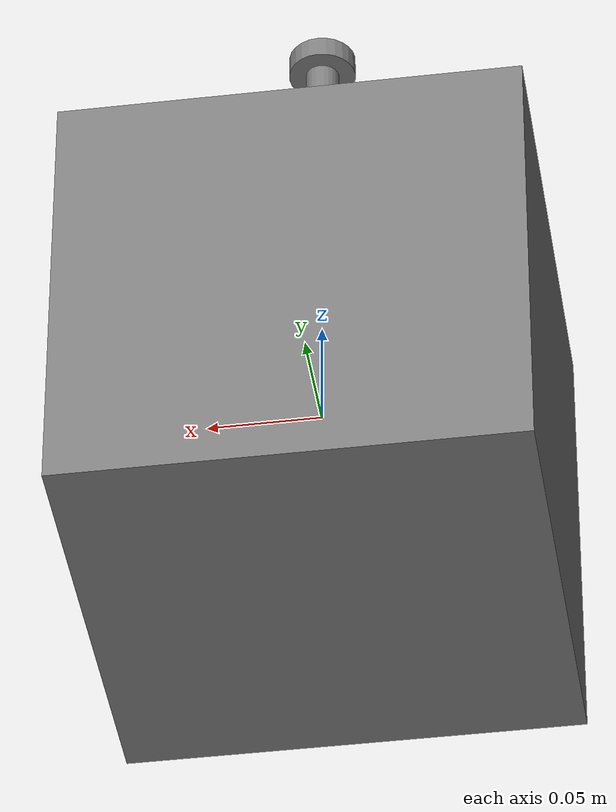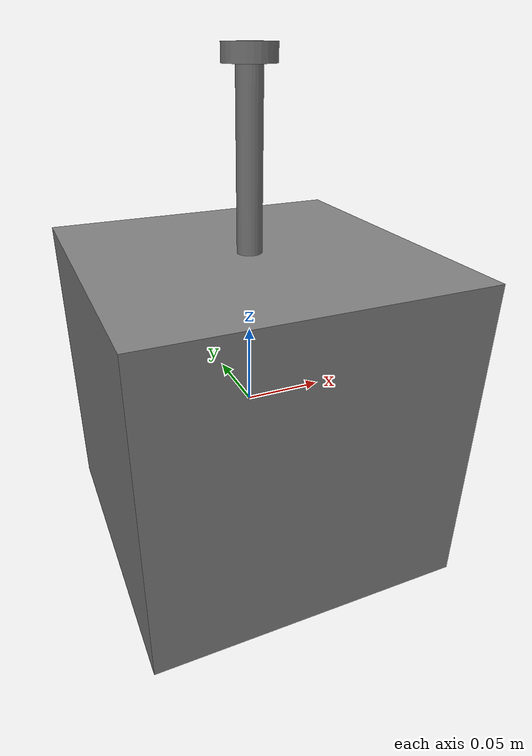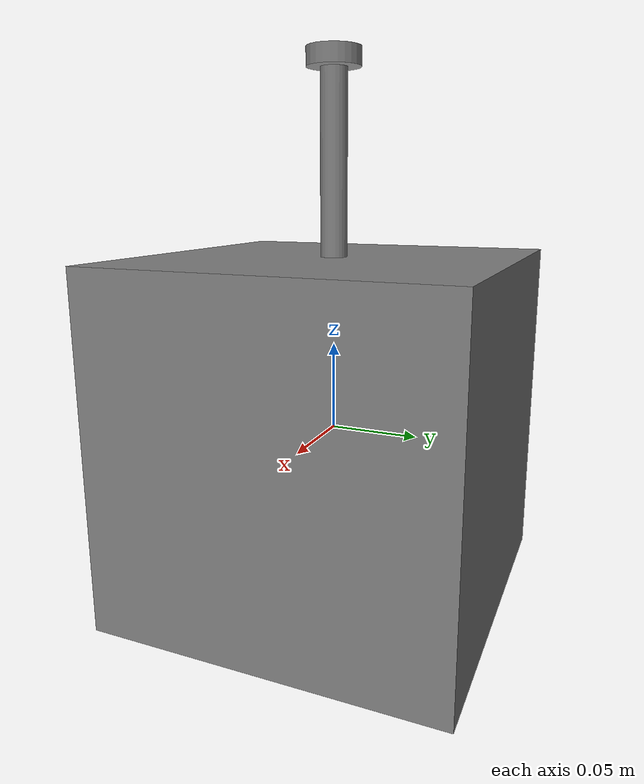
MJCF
<?xml version="1.0" ?>

<mujoco>
  <compiler angle="radian" coordinate="local"/>
  <option>
    <flag gravity="disable"/>
  </option>
  <contact>
    <exclude body1="nail_base" body2="nail"/>
  </contact>
  <default>
    <default class="visual">
      <geom contype="0" conaffinity="0"/>
    </default>
    <default class="collision">
      <geom contype="1" conaffinity="1"/>
    </default>
    <site rgba="1 0 0 .5"/>
  </default>

  <worldbody>
    <include file="nail_collision.xml"/>
  </worldbody>
</mujoco>

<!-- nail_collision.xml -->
<mujoco>
  <body name="nail_base" euler="0 0 0" pos="0 0 0">
    <body name="nail" euler="0 0 0" pos="0 0 .1">
      <joint type="slide" name="nail_position" pos="0 0 0" axis="0 0 1.0" limited="true" range="-0.1 0" frictionloss="10.0"/>
      <geom class="collision" type="cylinder" euler="0 0 0" pos="0 0 0.05" size="0.0075 0.05" mass=".05"/>
      <geom class="collision" type="cylinder" euler="0 0 0" pos="0 0 0.105" size="0.015 0.005" mass=".05"/>
      <site name="nail_top" pos="0 0 0" euler="0 0 0" size="0.005 0.005 0.005"/>
    </body>

    <geom class="collision" type="box" euler="0 0 0" pos="0 0 0" size="0.1 0.1 0.1"/>
  </body>
</mujoco>
